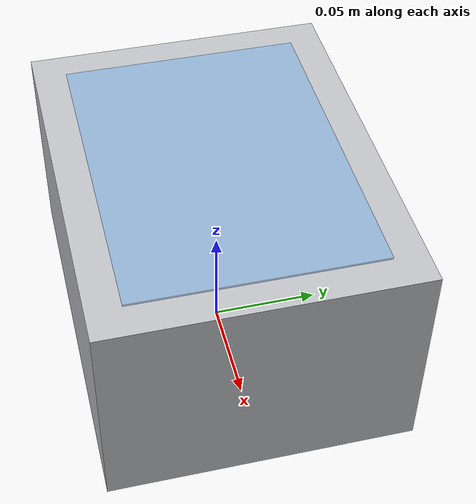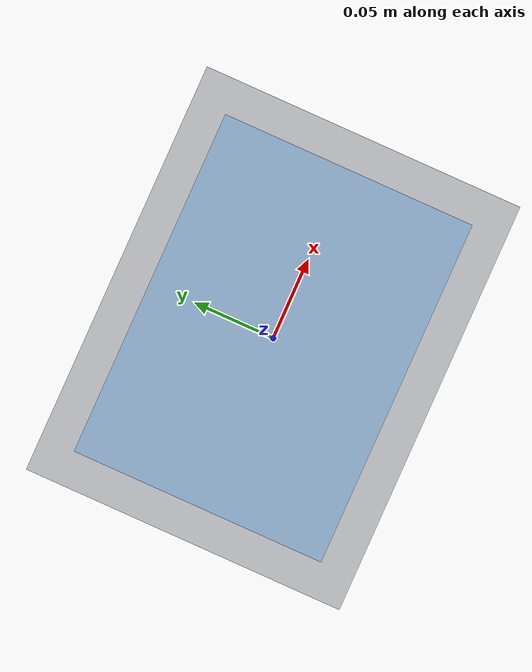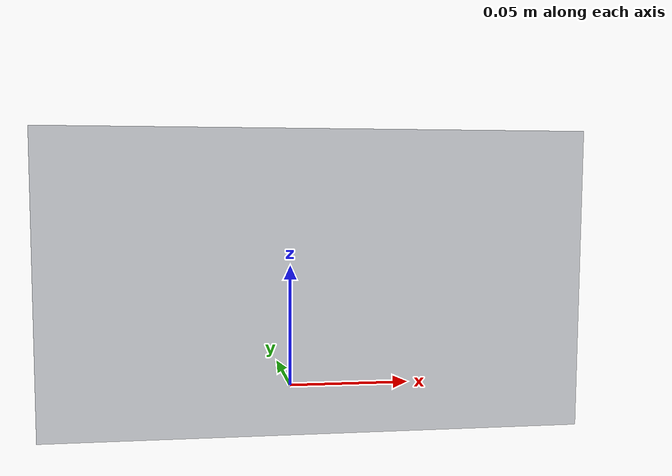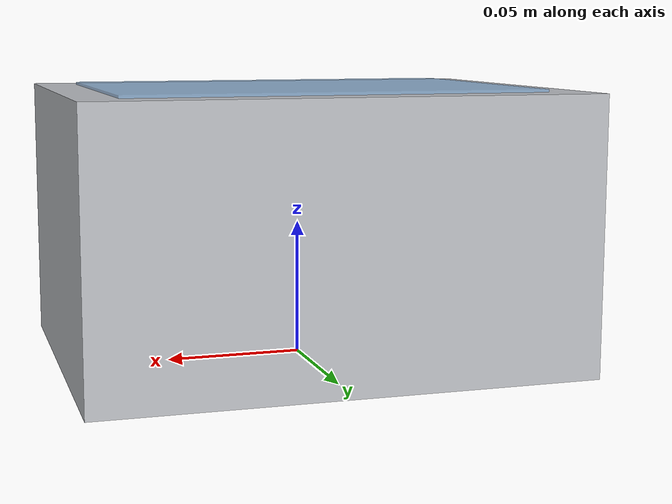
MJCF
<?xml version="1.0" encoding="utf-8"?>
<mujoco model="water_bath">
  <compiler angle="radian" autolimits="true"/>
  <default>
    <default class="body"><geom contype="1" conaffinity="1"/></default>
  </default>
  <worldbody>
    <body name="base">
      <geom type="box" size="0.09 0.07 0.05" pos="0 0 0.05" rgba="0.75 0.76 0.78 1" class="body"/>
      <body name="lid" pos="0 0.07 0.10">
        <joint name="lid_joint" type="hinge" axis="1 0 0" range="0 1.8" damping="0.5" frictionloss="0.5"/>
  <geom type="box" size="0.075 0.055 0.001" pos="0 -0.07 0" rgba="0.5 0.7 0.9 0.6" class="body"/>
      </body>
    </body>
  </worldbody>
</mujoco>
